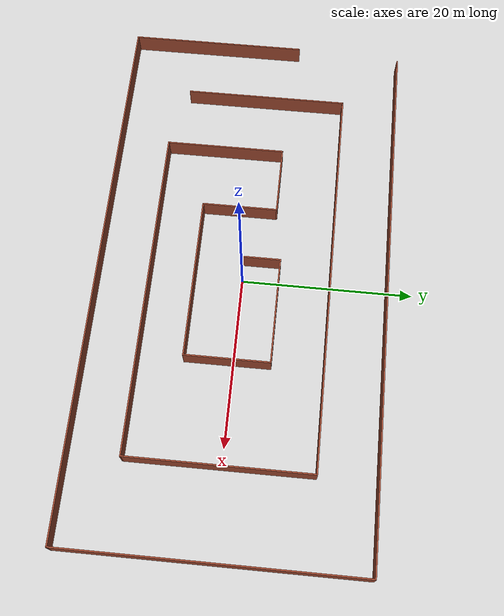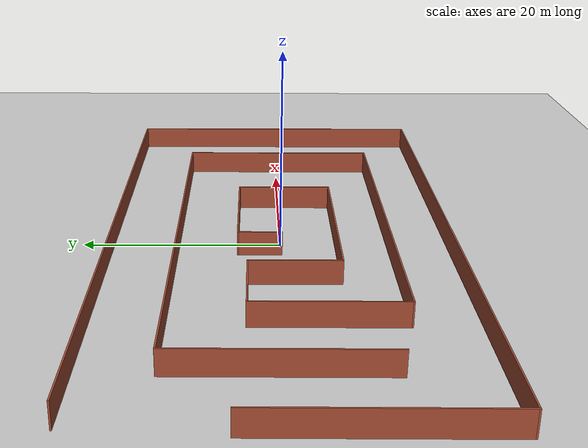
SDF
<?xml version="1.0" ?>

<sdf version="1.5">
  <!-- We use a custom world for the robot so that it can be tested in a simple house -->
  <world name="maze">

    <!-- Add a ground plane -->
    <include>
        <uri>model://ground_plane</uri>
        <material>
            <script>
                <uri>file://media/materials/scripts/gazebo.material</uri>
            </script>
        </material>
    </include>

    <!-- Global light source -->
    <include>
      <uri>model://sun</uri>
    </include>

    <!-- Apartment Walls -->
    <include>
      <uri>model://maze</uri>
      <pose>0 0 0 0 0 0</pose>
    </include>

  </world>
</sdf>

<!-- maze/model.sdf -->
<sdf version='1.7'>
  <model name='maze'>
    <pose>2.16458 -3.89374 0 0 -0 0</pose>
    <link name='Wall_10'>
      <collision name='Wall_10_Collision'>
        <geometry>
          <box>
            <size>47 0.15 2.5</size>
          </box>
        </geometry>
        <pose>0 0 1.25 0 -0 0</pose>
      </collision>
      <visual name='Wall_10_Visual'>
        <pose>0 0 1.25 0 -0 0</pose>
        <geometry>
          <box>
            <size>47 0.15 2.5</size>
          </box>
        </geometry>
        <material>
          <script>
            <uri>file://media/materials/scripts/gazebo.material</uri>
            <name>Gazebo/Bricks</name>
          </script>
          <ambient>1 1 1 1</ambient>
        </material>
        <meta>
          <layer>0</layer>
        </meta>
      </visual>
      <pose>-1.10912 10.2752 0 0 -0 0</pose>
    </link>
    <link name='Wall_11'>
      <collision name='Wall_11_Collision'>
        <geometry>
          <box>
            <size>21.25 0.15 2.5</size>
          </box>
        </geometry>
        <pose>0 0 1.25 0 -0 0</pose>
      </collision>
      <visual name='Wall_11_Visual'>
        <pose>0 0 1.25 0 -0 0</pose>
        <geometry>
          <box>
            <size>21.25 0.15 2.5</size>
          </box>
        </geometry>
        <material>
          <script>
            <uri>file://media/materials/scripts/gazebo.material</uri>
            <name>Gazebo/Bricks</name>
          </script>
          <ambient>1 1 1 1</ambient>
        </material>
        <meta>
          <layer>0</layer>
        </meta>
      </visual>
      <pose>22.3159 -0.274769 0 0 -0 -1.5708</pose>
    </link>
    <link name='Wall_12'>
      <collision name='Wall_12_Collision'>
        <geometry>
          <box>
            <size>39.25 0.15 2.5</size>
          </box>
        </geometry>
        <pose>0 0 1.25 0 -0 0</pose>
      </collision>
      <visual name='Wall_12_Visual'>
        <pose>0 0 1.25 0 -0 0</pose>
        <geometry>
          <box>
            <size>39.25 0.15 2.5</size>
          </box>
        </geometry>
        <material>
          <script>
            <uri>file://media/materials/scripts/gazebo.material</uri>
            <name>Gazebo/Bricks</name>
          </script>
          <ambient>1 1 1 1</ambient>
        </material>
        <meta>
          <layer>0</layer>
        </meta>
      </visual>
      <pose>2.76588 -10.8248 0 0 -0 3.14159</pose>
    </link>
    <link name='Wall_13'>
      <collision name='Wall_13_Collision'>
        <geometry>
          <box>
            <size>14.25 0.15 2.5</size>
          </box>
        </geometry>
        <pose>0 0 1.25 0 -0 0</pose>
      </collision>
      <visual name='Wall_13_Visual'>
        <pose>0 0 1.25 0 -0 0</pose>
        <geometry>
          <box>
            <size>14.25 0.15 2.5</size>
          </box>
        </geometry>
        <material>
          <script>
            <uri>file://media/materials/scripts/gazebo.material</uri>
            <name>Gazebo/Bricks</name>
          </script>
          <ambient>1 1 1 1</ambient>
        </material>
        <meta>
          <layer>0</layer>
        </meta>
      </visual>
      <pose>-16.7841 -3.77477 0 0 -0 1.5708</pose>
    </link>
    <link name='Wall_14'>
      <collision name='Wall_14_Collision'>
        <geometry>
          <box>
            <size>8.25 0.15 2.5</size>
          </box>
        </geometry>
        <pose>0 0 1.25 0 -0 0</pose>
      </collision>
      <visual name='Wall_14_Visual'>
        <pose>0 0 1.25 0 -0 0</pose>
        <geometry>
          <box>
            <size>8.25 0.15 2.5</size>
          </box>
        </geometry>
        <material>
          <script>
            <uri>file://media/materials/scripts/gazebo.material</uri>
            <name>Gazebo/Bricks</name>
          </script>
          <ambient>1 1 1 1</ambient>
        </material>
        <meta>
          <layer>0</layer>
        </meta>
      </visual>
      <pose>-12.7341 3.27523 0 0 -0 0</pose>
    </link>
    <link name='Wall_15'>
      <collision name='Wall_15_Collision'>
        <geometry>
          <box>
            <size>9 0.15 2.5</size>
          </box>
        </geometry>
        <pose>0 0 1.25 0 -0 0</pose>
      </collision>
      <visual name='Wall_15_Visual'>
        <pose>0 0 1.25 0 -0 0</pose>
        <geometry>
          <box>
            <size>9 0.15 2.5</size>
          </box>
        </geometry>
        <material>
          <script>
            <uri>file://media/materials/scripts/gazebo.material</uri>
            <name>Gazebo/Bricks</name>
          </script>
          <ambient>1 1 1 1</ambient>
        </material>
        <meta>
          <layer>0</layer>
        </meta>
      </visual>
      <pose>-8.68412 -1.14977 0 0 -0 -1.5708</pose>
    </link>
    <link name='Wall_16'>
      <collision name='Wall_16_Collision'>
        <geometry>
          <box>
            <size>19.25 0.15 2.5</size>
          </box>
        </geometry>
        <pose>0 0 1.25 0 -0 0</pose>
      </collision>
      <visual name='Wall_16_Visual'>
        <pose>0 0 1.25 0 -0 0</pose>
        <geometry>
          <box>
            <size>19.25 0.15 2.5</size>
          </box>
        </geometry>
        <material>
          <script>
            <uri>file://media/materials/scripts/gazebo.material</uri>
            <name>Gazebo/Bricks</name>
          </script>
          <ambient>1 1 1 1</ambient>
        </material>
        <meta>
          <layer>0</layer>
        </meta>
      </visual>
      <pose>0.865882 -5.57477 0 0 -0 0</pose>
    </link>
    <link name='Wall_19'>
      <collision name='Wall_19_Collision'>
        <geometry>
          <box>
            <size>10 0.15 2.5</size>
          </box>
        </geometry>
        <pose>0 0 1.25 0 -0 0</pose>
      </collision>
      <visual name='Wall_19_Visual'>
        <pose>0 0 1.25 0 -0 0</pose>
        <geometry>
          <box>
            <size>10 0.15 2.5</size>
          </box>
        </geometry>
        <material>
          <script>
            <uri>file://media/materials/scripts/gazebo.material</uri>
            <name>Gazebo/Bricks</name>
          </script>
          <ambient>1 1 1 1</ambient>
        </material>
        <meta>
          <layer>0</layer>
        </meta>
      </visual>
      <pose>10.4159 -0.649769 0 0 -0 1.5708</pose>
    </link>
    <link name='Wall_20'>
      <collision name='Wall_20_Collision'>
        <geometry>
          <box>
            <size>12.75 0.15 2.5</size>
          </box>
        </geometry>
        <pose>0 0 1.25 0 -0 0</pose>
      </collision>
      <visual name='Wall_20_Visual'>
        <pose>0 0 1.25 0 -0 0</pose>
        <geometry>
          <box>
            <size>12.75 0.15 2.5</size>
          </box>
        </geometry>
        <material>
          <script>
            <uri>file://media/materials/scripts/gazebo.material</uri>
            <name>Gazebo/Bricks</name>
          </script>
          <ambient>1 1 1 1</ambient>
        </material>
        <meta>
          <layer>0</layer>
        </meta>
      </visual>
      <pose>4.11588 4.27523 0 0 -0 3.14159</pose>
    </link>
    <link name='Wall_21'>
      <collision name='Wall_21_Collision'>
        <geometry>
          <box>
            <size>4.5 0.15 2.5</size>
          </box>
        </geometry>
        <pose>0 0 1.25 0 -0 0</pose>
      </collision>
      <visual name='Wall_21_Visual'>
        <pose>0 0 1.25 0 -0 0</pose>
        <geometry>
          <box>
            <size>4.5 0.15 2.5</size>
          </box>
        </geometry>
        <material>
          <script>
            <uri>file://media/materials/scripts/gazebo.material</uri>
            <name>Gazebo/Bricks</name>
          </script>
          <ambient>1 1 1 1</ambient>
        </material>
        <meta>
          <layer>0</layer>
        </meta>
      </visual>
      <pose>-2.18412 2.10023 0 0 -0 -1.5708</pose>
    </link>
    <link name='Wall_4'>
      <collision name='Wall_4_Collision'>
        <geometry>
          <box>
            <size>64 0.15 2.5</size>
          </box>
        </geometry>
        <pose>0 0 1.25 0 -0 0</pose>
      </collision>
      <visual name='Wall_4_Visual'>
        <pose>0 0 1.25 0 -0 0</pose>
        <geometry>
          <box>
            <size>64 0.15 2.5</size>
          </box>
        </geometry>
        <material>
          <script>
            <uri>file://media/materials/scripts/gazebo.material</uri>
            <name>Gazebo/Bricks</name>
          </script>
          <ambient>1 1 1 1</ambient>
        </material>
        <meta>
          <layer>0</layer>
        </meta>
      </visual>
      <pose>0.375 16.925 0 0 -0 0</pose>
    </link>
    <link name='Wall_5'>
      <collision name='Wall_5_Collision'>
        <geometry>
          <box>
            <size>34 0.15 2.5</size>
          </box>
        </geometry>
        <pose>0 0 1.25 0 -0 0</pose>
      </collision>
      <visual name='Wall_5_Visual'>
        <pose>0 0 1.25 0 -0 0</pose>
        <geometry>
          <box>
            <size>34 0.15 2.5</size>
          </box>
        </geometry>
        <material>
          <script>
            <uri>file://media/materials/scripts/gazebo.material</uri>
            <name>Gazebo/Bricks</name>
          </script>
          <ambient>1 1 1 1</ambient>
        </material>
        <meta>
          <layer>0</layer>
        </meta>
      </visual>
      <pose>32.3 -0 0 0 -0 -1.5708</pose>
    </link>
    <link name='Wall_6'>
      <collision name='Wall_6_Collision'>
        <geometry>
          <box>
            <size>64.75 0.15 2.5</size>
          </box>
        </geometry>
        <pose>0 0 1.25 0 -0 0</pose>
      </collision>
      <visual name='Wall_6_Visual'>
        <pose>0 0 1.25 0 -0 0</pose>
        <geometry>
          <box>
            <size>64.75 0.15 2.5</size>
          </box>
        </geometry>
        <material>
          <script>
            <uri>file://media/materials/scripts/gazebo.material</uri>
            <name>Gazebo/Bricks</name>
          </script>
          <ambient>1 1 1 1</ambient>
        </material>
        <meta>
          <layer>0</layer>
        </meta>
      </visual>
      <pose>-0 -16.925 0 0 -0 3.14159</pose>
    </link>
    <link name='Wall_7'>
      <collision name='Wall_7_Collision'>
        <geometry>
          <box>
            <size>21.25 0.15 2.5</size>
          </box>
        </geometry>
        <pose>0 0 1.25 0 -0 0</pose>
      </collision>
      <visual name='Wall_7_Visual'>
        <pose>0 0 1.25 0 -0 0</pose>
        <geometry>
          <box>
            <size>21.25 0.15 2.5</size>
          </box>
        </geometry>
        <material>
          <script>
            <uri>file://media/materials/scripts/gazebo.material</uri>
            <name>Gazebo/Bricks</name>
          </script>
          <ambient>1 1 1 1</ambient>
        </material>
        <meta>
          <layer>0</layer>
        </meta>
      </visual>
      <pose>-32.3 -6.375 0 0 -0 1.5708</pose>
    </link>
    <link name='Wall_9'>
      <collision name='Wall_9_Collision'>
        <geometry>
          <box>
            <size>19.5 0.15 2.5</size>
          </box>
        </geometry>
        <pose>0 0 1.25 0 -0 0</pose>
      </collision>
      <visual name='Wall_9_Visual'>
        <pose>0 0 1.25 0 -0 0</pose>
        <geometry>
          <box>
            <size>19.5 0.15 2.5</size>
          </box>
        </geometry>
        <material>
          <script>
            <uri>file://media/materials/scripts/gazebo.material</uri>
            <name>Gazebo/Bricks</name>
          </script>
          <ambient>1 1 1 1</ambient>
        </material>
        <meta>
          <layer>0</layer>
        </meta>
      </visual>
      <pose>-24.5341 0.600231 0 0 -0 1.5708</pose>
    </link>
    <static>1</static>
  </model>
</sdf>
